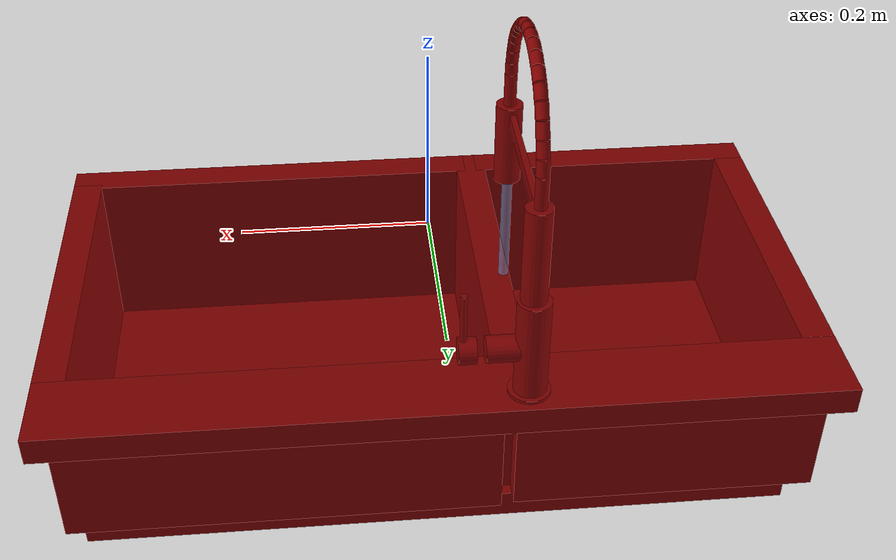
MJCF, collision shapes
<?xml version='1.0' encoding='UTF-8'?>
<mujoco model="model">
  <option timestep="0.002" gravity="0.0 0.0 -9.81"/>
  <compiler angle="radian"/>
  <asset>
    <mesh file="visuals/handle.obj" name="handle_vis"/>
    <mesh file="visuals/Body001.obj" name="Body001_vis"/>
    <mesh file="visuals/spout.obj" name="spout_vis"/>
    <texture file="visuals/T_BC001.png" name="Body001_material" type="2d"/>
    <material name="Body001_material" rgba="1 1 1 1.0" texture="Body001_material" shininess="0.5" specular="1"/>
    <texture file="visuals/T_BC001.png" name="handle_material" type="2d"/>
    <material name="handle_material" rgba="1 1 1 1.0" texture="handle_material" shininess="0.5" specular="1"/>
    <texture file="visuals/T_BC001.png" name="spout_material" type="2d"/>
    <material name="spout_material" rgba="1 1 1 1.0" texture="spout_material" shininess="0.5" specular="1"/>
  </asset>
  <default>
    <default class="visual">
      <geom conaffinity="0" contype="0" group="1" type="mesh"/>
    </default>
    <default class="collision">
      <geom group="0" rgba="0.5 0 0 0.5" solimp="0.998 0.998 0.001" solref="0.001 2"/>
    </default>
    <default class="spawn">
      <geom group="0" rgba="1 1 1 0.5" contype="0" conaffinity="0"/>
      <site group="0" rgba="1 1 1 0.5"/>
    </default>
    <default class="region">
      <geom group="1" conaffinity="0" contype="0" rgba="0 1 0 0"/>
    </default>
  </default>
  <worldbody>
    <body>
      <body name="object">
        <geom mesh="Body001_vis" type="mesh" solimp="0.998 0.998 0.001" solref="0.001 1" friction="0.95 0.3 0.1" class="visual" material="Body001_material"/>
        <geom type="box" pos="0.39671258 -0.02814975 -0.15928397" size="0.016773320734500885 0.18149054050445557 0.09561360627412796" quat="1.0 0.0 0.0 0.0" class="collision"/>
        <geom type="box" pos="0.17440782 -0.22043475 -0.15928353" size="0.23907756805419922 0.017726700752973557 0.09561268985271454" quat="1.0 0.0 0.0 0.0" class="collision"/>
        <geom type="box" pos="-0.07166830 -0.04264377 -0.15968934" size="0.017423801124095917 0.19551722705364227 0.09601826220750809" quat="1.0 0.0 0.0 0.0" class="collision"/>
        <geom type="box" pos="0.17134673 0.16442983 -0.16828833" size="0.23601678013801575 0.015311741270124912 0.08872826397418976" quat="1.0 0.0 0.0 0.0" class="collision"/>
        <geom type="box" pos="0.00000023 0.19564005 -0.07863849" size="0.41348493099212646 0.04253404587507248 0.014967692084610462" quat="1.0 0.0 0.0 0.0" class="collision"/>
        <geom type="box" pos="-0.39614444 -0.04264384 -0.15928318" size="0.01734103076159954 0.19551728665828705 0.09561200439929962" quat="1.0 0.0 0.0 0.0" class="collision"/>
        <geom type="box" pos="-0.24584714 -0.22043477 -0.15928347" size="0.16763804852962494 0.017726682126522064 0.09561260044574738" quat="1.0 0.0 0.0 0.0" class="collision"/>
        <geom type="box" pos="-0.24584713 0.16276932 -0.16318770" size="0.16763818264007568 0.0153117123991251 0.09170833230018616" quat="1.0 0.0 0.0 0.0" class="collision"/>
        <geom type="box" pos="0.00105506 -0.02203464 -0.27022960" size="0.3891640901565552 0.1871734857559204 0.01610415056347847" quat="1.0 0.0 0.0 0.0" class="collision"/>
        <geom type="cylinder" pos="-0.08261127 0.20910627 -0.00496964" size="0.01719251088798046 0.0542680025100708" quat="1.0 0.0 0.0 0.0" class="collision"/>
        <geom type="cylinder" pos="-0.06003011 0.20753411 -0.00850900" size="0.013796098530292511 0.023086797446012497" quat="0.7071068286895752 1.2101618374060763e-08 0.7071067690849304 -1.2101617485882343e-08" class="collision"/>
        <geom type="cylinder" pos="-0.08179592 0.20925762 -0.06114724" size="0.021898172795772552 0.00178152893204242" quat="1.0 0.0 0.0 0.0" class="collision"/>
        <body name="handle">
          <joint axis="1.0 0.0 0.0" pos="-0.02009606 0.20808194 -0.00861115" limited="true" name="handle_temp_joint" type="hinge" range="-0.7853981633974483 0.7853981633974483" damping="0.5" frictionloss="1" armature="2"/>
          <joint axis="0.0 1.0 0.0" pos="-0.02009606 0.20808194 -0.00861115" limited="true" name="handle_joint" type="hinge" range="0 0.5" damping="0.5" frictionloss="1" armature="2"/>
          <geom mesh="handle_vis" type="mesh" solimp="0.998 0.998 0.001" solref="0.001 1" friction="0.95 0.3 0.1" class="visual" material="handle_material"/>
          <geom name="handle_main" type="cylinder" pos="-0.01508081 0.20858358 0.03180904" size="0.003564587328583002 0.02724577859044075" quat="1.0 0.0 0.0 0.0" class="collision"/>
          <geom type="cylinder" pos="-0.01887304 0.20814451 -0.00842778" size="0.013808298856019974 0.009049287997186184" quat="0.7071068286895752 1.2101618374060763e-08 0.7071067690849304 -1.2101617485882343e-08" class="collision"/>
        </body>
        <body name="spout">
          <joint axis="0.0 0.0 1.0" pos="-0.08283449 0.20881434 0.18762849" limited="true" name="spout_joint" range="-0.7853981633974483 0.7853981633974483" type="hinge" damping="10"/>
          <site type="cylinder" rgba="0.5 0.75 1 0.5" size="0.005516553297638893 0.19040846824645996" pos="-0.08293893 0.01115562 -0.07209308" name="water"/>
          <geom mesh="spout_vis" type="mesh" solimp="0.998 0.998 0.001" solref="0.001 1" friction="0.95 0.3 0.1" class="visual" material="spout_material"/>
          <geom type="cylinder" pos="-0.08139061 0.20925762 0.10280247" size="0.01332130841910839 0.05187058448791504" quat="1.0 0.0 0.0 0.0" class="collision" name="spout_main"/>
          <geom type="cylinder" pos="-0.08266889 0.20925762 0.13266049" size="0.006440197583287954 0.055047474801540375" quat="1.0 0.0 0.0 0.0" class="collision"/>
          <geom type="cylinder" pos="-0.08276910 0.20722007 0.19564772" size="0.006440198514610529 0.007824218831956387" quat="0.994442343711853 0.09780789911746979 -0.01097042765468359 0.03738630190491676" class="collision"/>
          <geom type="cylinder" pos="-0.08276910 0.20295059 0.21132184" size="0.006440197583287954 0.007824219763278961" quat="0.9805814027786255 0.1922031044960022 -0.014486033469438553 0.036169588565826416" class="collision"/>
          <geom type="cylinder" pos="-0.08276910 0.19575093 0.22609291" size="0.006440199911594391 0.007824218831956387" quat="0.9713069796562195 0.23461611568927765 -0.01604348048567772 0.03550620749592781" class="collision"/>
          <geom type="cylinder" pos="-0.08276910 0.18674063 0.23975609" size="0.006440198048949242 0.007824218831956387" quat="0.9441950917243958 0.327074259519577 -0.019388651475310326 0.03379601240158081" class="collision"/>
          <geom type="cylinder" pos="-0.08276910 0.17555596 0.25168524" size="0.0064401994459331036 0.007824218831956387" quat="0.9140971899032593 0.4036189317703247 -0.022102370858192444 0.03208690136671066" class="collision"/>
          <geom type="cylinder" pos="-0.08276910 0.16263544 0.26127736" size="0.006440198048949242 0.007824218831956387" quat="0.860331118106842 0.5082443356513977 -0.025719990953803062 0.029267169535160065" class="collision"/>
          <geom type="cylinder" pos="-0.08276910 0.14791537 0.26809833" size="0.006440197117626667 0.007824216969311237" quat="0.8240454196929932 0.5651823282241821 -0.027637701481580734 0.02746354043483734" class="collision"/>
          <geom type="cylinder" pos="-0.08276910 0.13262791 0.27302534" size="0.006440197583287954 0.007824218831956387" quat="0.7813286781311035 0.6229024529457092 -0.02953859232366085 0.025407683104276657" class="collision"/>
          <geom type="cylinder" pos="-0.08276910 0.11661897 0.27509574" size="0.006440198514610529 0.007824219763278961" quat="0.7136919498443604 0.6993752717971802 -0.031976960599422455 0.022261176258325577" class="collision"/>
          <geom type="cylinder" pos="-0.08276910 0.10054002 0.27455602" size="0.006440198980271816 0.007824219763278961" quat="0.6678956747055054 0.7432343363761902 -0.033324532210826874 0.020188095048069954" class="collision"/>
          <geom type="cylinder" pos="-0.08276910 0.08464373 0.27167709" size="0.006440198514610529 0.007824220694601536" quat="0.612804114818573 0.789273738861084 -0.034688107669353485 0.01774313487112522" class="collision"/>
          <geom type="cylinder" pos="-0.08276910 0.06883027 0.26576416" size="0.006440197583287954 0.007824218831956387" quat="0.5160938501358032 0.8556454181671143 -0.03652830421924591 0.013556111603975296" class="collision"/>
          <geom type="cylinder" pos="-0.08276910 0.04148958 0.24725086" size="0.006440200377255678 0.007824218831956387" quat="0.4162314236164093 0.9084235429763794 -0.03782482445240021 0.009347004815936089" class="collision"/>
          <geom type="cylinder" pos="-0.08276910 0.05438769 0.25720856" size="0.006440198514610529 0.007824218831956387" quat="0.45055606961250305 0.8918974995613098 -0.03744104504585266 0.010782015509903431" class="collision"/>
          <geom type="cylinder" pos="-0.08276910 0.03018448 0.23547135" size="0.006440197583287954 0.007824216037988663" quat="0.3240131139755249 0.9452499151229858 -0.03856576979160309 0.005546665284782648" class="collision"/>
          <geom type="cylinder" pos="-0.08276910 0.02139580 0.22201885" size="0.006440198048949242 0.007824217900633812" quat="0.23667094111442566 0.9708083271980286 -0.038910411298274994 0.0020149636548012495" class="collision"/>
          <geom type="cylinder" pos="-0.08276910 0.01507224 0.20691113" size="0.006440198048949242 0.007824218831956387" quat="0.1699947863817215 0.9846743941307068 -0.03895731642842293 -0.0006401168648153543" class="collision"/>
          <geom type="cylinder" pos="-0.08276910 0.01100965 0.19123862" size="0.006440198048949242 0.007824218831956387" quat="0.06431341171264648 0.9971688389778137 -0.03866863623261452 -0.00477951392531395" class="collision"/>
          <geom type="cylinder" pos="-0.08266889 0.01010417 0.12840002" size="0.006440197583287954 0.055047474801540375" quat="1.0 0.0 0.0 0.0" class="collision"/>
          <geom type="cylinder" pos="-0.08266889 0.00914120 0.10391744" size="0.013979204930365086 0.0441499687731266" quat="1.0 0.0 0.0 0.0" class="collision"/>
          <geom type="box" pos="-0.08424347 0.10847937 0.13518045" size="0.003166247857734561 0.08885989338159561 0.006892006378620863" quat="1.0 0.0 0.0 0.0" class="collision"/>
        </body>
        <geom class="region" name="reg_basin_left" type="box" pos="-0.23203497 -0.026352089999999995 -0.15877249999999998" size="0.13551385999999999 0.1676127 0.09504769"/>
        <geom class="region" name="reg_basin_right" type="box" pos="0.16251351 -0.026285569999999994 -0.15905313" size="0.20339576 0.16640629 0.09532832000000001"/>
        <geom class="region" name="reg_main" type="box" pos="-4.899999999918858e-07 6.1849999999918914e-06 -0.175060355" size="0.41448490000000004 0.239167615 0.11238948500000001"/>
      </body>
    </body>
  </worldbody>
  <actuator>
    <motor name="handle_joint_actuator" joint="handle_joint" gear="10"/>
    <motor name="handle_temp_joint_actuator" joint="handle_temp_joint" gear="10"/>
    <motor name="spout_joint_actuator" joint="spout_joint" gear="10"/>
  </actuator>
</mujoco>
